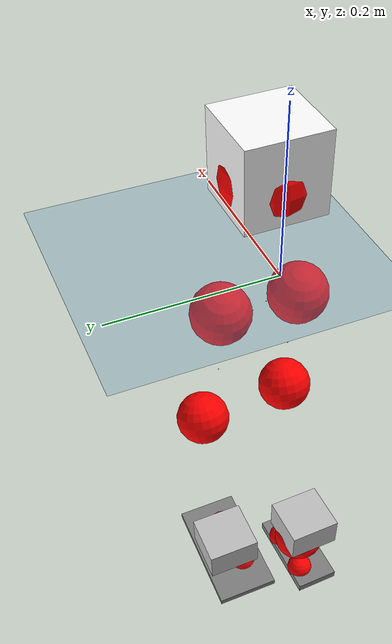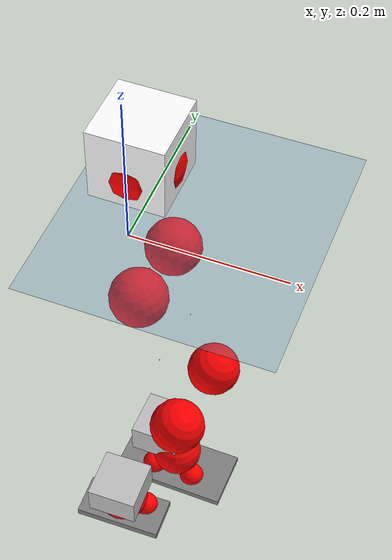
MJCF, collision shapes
<mujoco model="pi_12dof_release_v1">
  <compiler angle="radian" assetdir="assets" balanceinertia="true" inertiafromgeom="false"/>

  <option timestep="0.005" density="1.2" viscosity="2e-05"/>

  <size nkey="1"/>

  <visual>
    <quality shadowsize="8192"/>
    <map shadowclip="0.5"/>
  </visual>

  <default>
    <default class="/">
      <joint armature="0.01" damping="0.01" frictionloss="0.01"/>
      <geom contype="0" conaffinity="0" group="1" solref="-1000 -80"/>
      <site size="0.01 0.005 0.005" group="5"/>
      <general forcelimited="true" biastype="affine" gainprm="20" biasprm="0 -20 -0.5"/>
      <default class="foot">
        <geom size="0.0845 0.036 0.005" type="box" condim="6" group="4" priority="1" friction="0.9 0.2 0.2" solimp="0.015 1 0.005"/>
      </default>
      <default class="reward_collision_sphere">
        <geom group="5" rgba="1 0 0 1"/>
      </default>
    </default>
  </default>

  <asset>
    <texture type="skybox" colorspace="auto" name="//unnamed_texture_0" builtin="gradient" rgb1="0.95 0.95 0.95" rgb2="0.95 0.95 0.95" width="100" height="600"/>
    <texture type="2d" colorspace="auto" name="texplane" builtin="checker" rgb1="0.345 0.575 0.748" rgb2="0.345 0.575 0.748" markrgb="1 1 1" width="512" height="512"/>
    <material name="MatPlane" class="/" texture="texplane" texuniform="true" texrepeat="2 2" specular="0.9"/>
    <mesh name="baselink_1" class="/" file="baselink_1.STL"/>
    <mesh name="r_hip_pitch_link" class="/" file="r_hip_pitch_link.STL"/>
    <mesh name="r_hip_roll_link" class="/" file="r_hip_roll_link.STL"/>
    <mesh name="r_thigh_link" class="/" file="r_thigh_link.STL"/>
    <mesh name="r_calf_link" class="/" file="r_calf_link.STL"/>
    <mesh name="r_ankle_pitch_link" class="/" file="r_ankle_pitch_link.STL"/>
    <mesh name="r_ankle_roll_link" class="/" file="r_ankle_roll_link.STL"/>
    <mesh name="l_hip_pitch_link" class="/" file="l_hip_pitch_link.STL"/>
    <mesh name="l_hip_roll_link" class="/" file="l_hip_roll_link.STL"/>
    <mesh name="l_thigh_link" class="/" file="l_thigh_link.STL"/>
    <mesh name="l_calf_link" class="/" file="l_calf_link.STL"/>
    <mesh name="l_ankle_pitch_link" class="/" file="l_ankle_pitch_link.STL"/>
    <mesh name="l_ankle_roll_link" class="/" file="l_ankle_roll_link.STL"/>
  </asset>

  <worldbody>
    <geom name="floor" class="/" size="100 100 0.125" type="plane" group="0" material="MatPlane"/>
    <light name="toplight_shadow" class="/" pos="0 0 5" dir="0.0990148 0.0990148 -0.990148" type="directional" ambient="0.04 0.04 0.04" diffuse="0.55 0.55 0.55" specular="0.12 0.12 0.12"/>
    <light name="toplight_fill" class="/" pos="0 0 5" dir="0.0990148 0.0990148 -0.990148" type="directional" castshadow="false" ambient="0.04 0.04 0.04" diffuse="0.3 0.3 0.3" specular="0.08 0.08 0.08"/>
    <body name="trunk" pos="0.0148928 0.0106948 0.00677671" quat="0.999981 -0.00524158 0.00316556 0.0002497">
      <inertial pos="0.0166912 0.00190295 0.0653644" quat="0.673382 0.00366404 -0.00343509 0.739278" mass="1.54448" diaginertia="0.000209407 0.00147279 0.0351594"/>
      <joint name="//unnamed_joint_0" type="free"/>
      <geom name="//unnamed_geom_1" class="/" type="mesh" density="0" rgba="1 1 1 1" mesh="baselink_1"/>
      <geom name="//unnamed_geom_2" class="/" size="0.0457361 0.0457361 0.0457361" pos="0 0 0.12703" type="box" rgba="1 1 1 1"/>
      <geom name="//unnamed_geom_3" class="reward_collision_sphere" size="0.0503097" pos="0 0 0.111151"/>
      <site name="imu" class="/" pos="-0.00435115 -0.032057 0.0258865" size="0.00914721"/>
      <camera name="track" class="/" pos="0 -1.39816 0" quat="0.707107 0.707107 0 0" mode="trackcom"/>
      <camera name="ego_camera" class="/" pos="0.0342908 0 0.285818" quat="-0.5 -0.5 0.5 0.5"/>
      <body name="r_hip_pitch_link" pos="0.00951998 -0.00645128 -0.0592651" quat="0.991722 -0.00367946 -0.128236 0.00538504">
        <inertial pos="0.0162387 -0.0301667 0.00818984" quat="-0.0117846 0.705183 -0.0265285 0.708431" mass="0.245101" diaginertia="1.88777e-06 1.6098e-05 0.000623399"/>
        <joint name="r_hip_pitch_joint" class="/" pos="0 0 0" axis="0.0526377 -0.998586 -0.0074701" stiffness="0.0734317" range="-1.75312 1.13379" armature="0.00939456" damping="0.0195368" frictionloss="0.00417095"/>
        <geom name="//unnamed_geom_4" class="/" type="mesh" density="0" rgba="0.75294 0.75294 0.75294 1" mesh="r_hip_pitch_link"/>
        <geom name="//unnamed_geom_5" class="/" size="0.000457361 0.000457361 0.000457361" type="box" rgba="0.75294 0.75294 0.75294 1"/>
        <body name="r_hip_roll_link" pos="0.00218292 -0.0430107 -0.00658875" quat="1 -0.000346816 6.75237e-05 0.000266717">
          <inertial pos="-0.0156606 -0.00209744 -0.110197" quat="0.709667 -0.0817528 -0.0888287 0.694117" mass="0.316071" diaginertia="6.87822e-06 4.3566e-05 0.00140763"/>
          <joint name="r_hip_roll_joint" class="/" pos="0 0 0" axis="-1 -0.00050816 0.00020935" range="0.129559 0.329272" armature="0.0160923" damping="0.0581567" frictionloss="0.00868023"/>
          <geom name="//unnamed_geom_6" class="/" type="mesh" density="0" rgba="0.75294 0.75294 0.75294 1" mesh="r_hip_roll_link"/>
          <geom name="//unnamed_geom_7" class="/" size="0.000457361 0.000457361 0.000457361" type="box" rgba="0.75294 0.75294 0.75294 1"/>
          <geom name="//unnamed_geom_8" class="reward_collision_sphere" size="0.0365888"/>
          <body name="r_thigh_link" pos="0.000303376 -0.00428203 -0.108075" quat="0.999987 0.00291828 -0.00163767 0.00375146">
            <inertial pos="-0.0092687 -0.00765351 -0.0641606" quat="0.706057 0.706347 0.0493467 0.0110476" mass="0.0811303" diaginertia="2.70073e-06 1.42768e-05 0.000664144"/>
            <joint name="r_thigh_joint" class="/" pos="0 0 0" axis="-0.0384053 0.0455536 -0.998223" stiffness="0.0738064" range="-0.314498 0.394103" armature="0.0156038" damping="0" frictionloss="0.00988189"/>
            <geom name="//unnamed_geom_9" class="/" type="mesh" density="0" rgba="0.75294 0.75294 0.75294 1" mesh="r_thigh_link"/>
            <geom name="//unnamed_geom_10" class="/" size="0.000457361 0.000457361 0.000457361" type="box" rgba="0.75294 0.75294 0.75294 1"/>
            <body name="r_calf_link" pos="0.000942122 -0.0147075 -0.115641" quat="0.948272 0.00128989 0.317441 0.00306579">
              <inertial pos="-0.0120622 -0.0059447 -0.112109" quat="0.999925 -0.00800874 0.00120542 0.00921542" mass="0.425706" diaginertia="6.3558e-05 0.000534214 0.00171553"/>
              <joint name="r_calf_joint" class="/" pos="0 0 0" axis="0.000978219 -0.999995 0.00296853" range="-1.61575 0.911685" armature="0.00104042" damping="0.0653682" frictionloss="0.00190117"/>
              <geom name="//unnamed_geom_11" class="/" type="mesh" density="0" rgba="0.75294 0.75294 0.75294 1" mesh="r_calf_link"/>
              <geom name="//unnamed_geom_12" class="/" size="0.000457361 0.000457361 0.000457361" type="box" rgba="0.75294 0.75294 0.75294 1"/>
              <geom name="//unnamed_geom_13" class="reward_collision_sphere" size="0.0365888"/>
              <body name="r_ankle_pitch_link" pos="-0.00142358 0.00532916 -0.235778" quat="0.980849 0.00512441 -0.194678 0.00313723">
                <inertial pos="0.0131265 0.0180431 0.00534283" quat="0.000690339 0.707772 0.0130751 0.70632" mass="0.174402" diaginertia="6.63822e-06 4.36761e-05 0.00150447"/>
                <joint name="r_ankle_pitch_joint" class="/" pos="0 0 0" axis="-0.0337388 -0.99696 -0.0702274" stiffness="0.0726296" range="-1.05367 0.2676" armature="0.010352" damping="0.011447" frictionloss="0.0139232"/>
                <geom name="//unnamed_geom_14" class="/" type="mesh" density="0" rgba="0.75294 0.75294 0.75294 1" mesh="r_ankle_pitch_link"/>
                <geom name="//unnamed_geom_15" class="/" size="0.0356741 0.0365888 0.022868" type="box" rgba="0.75294 0.75294 0.75294 1"/>
                <body name="r_ankle_roll_link" pos="0.0241675 0.0053422 -0.00138" quat="1 -5.64423e-05 7.557e-05 0.000265292">
                  <inertial pos="-0.0193559 0.000682803 -0.01771" quat="0.551611 0.423431 0.442478 0.566255" mass="0.313836" diaginertia="1.60066e-05 0.000165363 0.00237455"/>
                  <joint name="r_ankle_roll_joint" class="/" pos="0 0 0" axis="-0.996408 0.0215389 0.0818984" range="-0.109227 0.40422" armature="0.00792293" damping="0.0481391" frictionloss="0.00893594"/>
                  <geom name="//unnamed_geom_16" class="/" type="mesh" density="0" rgba="0.75294 0.75294 0.75294 1" mesh="r_ankle_roll_link"/>
                  <geom name="//unnamed_geom_17" class="/" type="mesh" rgba="0.75294 0.75294 0.75294 1" mesh="r_ankle_roll_link"/>
                  <geom name="right_foot" class="foot" size="0.0637599 0.0303112 0.00588025" pos="-0.0233177 0 -0.0698665"/>
                  <geom name="//unnamed_geom_19" class="reward_collision_sphere" size="0.0365888" pos="-0.0228605 0 -0.0317575"/>
                  <geom name="//unnamed_geom_20" class="reward_collision_sphere" size="0.0182944" pos="0.00685815 0.0139816 -0.063515"/>
                  <geom name="//unnamed_geom_21" class="reward_collision_sphere" size="0.0182944" pos="-0.0548652 0.0139816 -0.063515"/>
                  <site name="right_foot" class="foot" pos="-0.0233177 0 -0.0698665" size="0.00914721"/>
                </body>
              </body>
            </body>
          </body>
        </body>
      </body>
      <body name="l_hip_pitch_link" pos="0.00364454 0.0126058 -0.0615296" quat="0.991324 -0.00462648 -0.131354 -0.0015625">
        <inertial pos="-0.0145358 0.0422441 -0.00281251" quat="-0.0406965 0.706565 0.0293967 0.705865" mass="0.276624" diaginertia="2.53664e-06 1.4835e-05 0.00106065"/>
        <joint name="l_hip_pitch_joint" class="/" pos="0 0 0" axis="-0.00816011 0.999857 0.0148082" stiffness="0.0303949" range="-1.42995 1.74064" armature="0.00384181" damping="0.059621" frictionloss="0.00586484"/>
        <geom name="//unnamed_geom_22" class="/" type="mesh" density="0" rgba="0.75294 0.75294 0.75294 1" mesh="l_hip_pitch_link"/>
        <geom name="//unnamed_geom_23" class="/" size="0.000457361 0.000457361 0.000457361" type="box" rgba="0.75294 0.75294 0.75294 1"/>
        <body name="l_hip_roll_link" pos="0.014281 0.0324637 -0.0111371" quat="0.999974 -0.00466244 -0.00546023 -0.000761356">
          <inertial pos="0.000488582 0.00405062 -0.0927988" quat="0.737452 -0.0623834 -0.108608 0.663685" mass="0.342867" diaginertia="6.1838e-06 5.29681e-05 0.00119426"/>
          <joint name="l_hip_roll_joint" class="/" pos="0 0 0" axis="-0.999242 -0.0385897 -0.0050508" range="-0.38912 0.250684" armature="0.00408548" damping="0.083844" frictionloss="0.00542962"/>
          <geom name="//unnamed_geom_24" class="/" type="mesh" density="0" rgba="0.75294 0.75294 0.75294 1" mesh="l_hip_roll_link"/>
          <geom name="//unnamed_geom_25" class="/" size="0.000457361 0.000457361 0.000457361" type="box" rgba="0.75294 0.75294 0.75294 1"/>
          <geom name="//unnamed_geom_26" class="reward_collision_sphere" size="0.0365888"/>
          <body name="l_thigh_link" pos="-0.00583603 -0.00341583 -0.117986" quat="1 0.000179965 1.29475e-05 -4.86514e-05">
            <inertial pos="0.000595946 -0.00108776 -0.0846061" quat="0.675802 0.737074 -0.003234 0.00178777" mass="0.0868847" diaginertia="2.48878e-06 1.56038e-05 0.000596659"/>
            <joint name="l_thigh_joint" class="/" pos="0 0 0" axis="0.00215888 -0.0223134 -0.999749" stiffness="0.00300116" range="-0.588703 0.351266" armature="0.0135825" damping="0" frictionloss="0.0105485"/>
            <geom name="//unnamed_geom_27" class="/" type="mesh" density="0" rgba="0.75294 0.75294 0.75294 1" mesh="l_thigh_link"/>
            <geom name="//unnamed_geom_28" class="/" size="0.000457361 0.000457361 0.000457361" type="box" rgba="0.75294 0.75294 0.75294 1"/>
            <body name="l_calf_link" pos="-0.00150579 0.014577 -0.12353" quat="0.947492 -0.00306013 0.319734 -0.00448481">
              <inertial pos="9.2422e-05 -0.00930631 -0.113485" quat="0.997422 -0.0254591 -0.0362424 0.0564556" mass="0.633704" diaginertia="6.27517e-05 0.000516386 0.00192738"/>
              <joint name="l_calf_joint" class="/" pos="0 0 0" axis="0.00175345 0.999996 -0.00204211" stiffness="0.0205434" range="-0.57426 1.5919" armature="0.0163039" damping="0.0131955" frictionloss="0.00224464"/>
              <geom name="//unnamed_geom_29" class="/" type="mesh" density="0" rgba="0.75294 0.75294 0.75294 1" mesh="l_calf_link"/>
              <geom name="//unnamed_geom_30" class="/" size="0.000457361 0.000457361 0.000457361" type="box" rgba="0.75294 0.75294 0.75294 1"/>
              <geom name="//unnamed_geom_31" class="reward_collision_sphere" size="0.0365888"/>
              <body name="l_ankle_pitch_link" pos="-0.000974143 0.00597184 -0.209914" quat="0.980624 -0.00049266 -0.195886 0.00243617">
                <inertial pos="0.00134457 0.00751563 -0.00133963" quat="-0.00182049 0.707861 0.00133972 0.706348" mass="0.1601" diaginertia="7.23905e-06 3.99794e-05 0.00153458"/>
                <joint name="l_ankle_pitch_joint" class="/" pos="0 0 0" axis="-0.0152962 0.99984 0.00927848" stiffness="0.0106471" range="-0.438151 1.30735" armature="0.00920617" damping="0.00219793" frictionloss="0.00584032"/>
                <geom name="//unnamed_geom_32" class="/" type="mesh" density="0" rgba="0.75294 0.75294 0.75294 1" mesh="l_ankle_pitch_link"/>
                <geom name="//unnamed_geom_33" class="/" size="0.0356741 0.0365888 0.022868" type="box" rgba="0.75294 0.75294 0.75294 1"/>
                <body name="l_ankle_roll_link" pos="0.0513982 -0.0112555 2.12592e-05" quat="0.999998 -0.00104212 0.00142926 -0.000674784">
                  <inertial pos="-0.0271279 -0.00174932 -0.0317742" quat="0.559903 0.441057 0.404962 0.572698" mass="0.379379" diaginertia="2.39673e-05 0.000233349 0.00296855"/>
                  <joint name="l_ankle_roll_joint" class="/" pos="0 0 0" axis="-0.998182 -0.0403301 -0.0447966" stiffness="0.0462525" range="-0.0518032 0.156616" armature="0.00832503" damping="0" frictionloss="0.00691899"/>
                  <geom name="//unnamed_geom_34" class="/" type="mesh" density="0" rgba="0.75294 0.75294 0.75294 1" mesh="l_ankle_roll_link"/>
                  <geom name="//unnamed_geom_35" class="/" type="mesh" rgba="0.75294 0.75294 0.75294 1" mesh="l_ankle_roll_link"/>
                  <geom name="left_foot" class="foot" size="0.0853449 0.0438619 0.0045101" pos="-0.0233177 0 -0.0698665"/>
                  <geom name="//unnamed_geom_37" class="reward_collision_sphere" size="0.0365888" pos="-0.0228605 0 -0.0317575"/>
                  <geom name="//unnamed_geom_38" class="reward_collision_sphere" size="0.0182944" pos="0.00685815 -0.0139816 -0.063515"/>
                  <geom name="//unnamed_geom_39" class="reward_collision_sphere" size="0.0182944" pos="-0.0548652 -0.0139816 -0.063515"/>
                  <site name="left_foot" class="foot" pos="-0.0233177 0 -0.0698665" size="0.00914721"/>
                </body>
              </body>
            </body>
          </body>
        </body>
      </body>
    </body>
  </worldbody>

  <contact>
    <pair class="/" geom1="floor" geom2="right_foot" name="//unnamed_contact_1"/>
    <pair class="/" geom1="floor" geom2="left_foot" name="//unnamed_contact_0"/>
  </contact>

  <actuator>
    <general name="r_hip_pitch_joint" class="/" joint="r_hip_pitch_joint" forcerange="-22.3561 22.3561" gainprm="16.802" biasprm="0 -16.802 -0.562036"/>
    <general name="r_hip_roll_joint" class="/" joint="r_hip_roll_joint" forcerange="-18.738 18.738" gainprm="16.802" biasprm="0 -16.802 -0.562036"/>
    <general name="r_thigh_joint" class="/" joint="r_thigh_joint" forcerange="-19.0341 19.0341" gainprm="16.802" biasprm="0 -16.802 -0.562036"/>
    <general name="r_calf_joint" class="/" joint="r_calf_joint" forcerange="-21.862 21.862" gainprm="16.802" biasprm="0 -16.802 -0.562036"/>
    <general name="r_ankle_pitch_joint" class="/" joint="r_ankle_pitch_joint" forcerange="-16.2765 16.2765" gainprm="16.802" biasprm="0 -16.802 -0.562036"/>
    <general name="r_ankle_roll_joint" class="/" joint="r_ankle_roll_joint" forcerange="-21.9485 21.9485" gainprm="16.802" biasprm="0 -16.802 -0.562036"/>
    <general name="l_hip_pitch_joint" class="/" joint="l_hip_pitch_joint" forcerange="-20.4149 20.4149" gainprm="16.802" biasprm="0 -16.802 -0.562036"/>
    <general name="l_hip_roll_joint" class="/" joint="l_hip_roll_joint" forcerange="-25.2963 25.2963" gainprm="16.802" biasprm="0 -16.802 -0.562036"/>
    <general name="l_thigh_joint" class="/" joint="l_thigh_joint" forcerange="-19.7769 19.7769" gainprm="16.802" biasprm="0 -16.802 -0.562036"/>
    <general name="l_calf_joint" class="/" joint="l_calf_joint" forcerange="-7.73693 7.73693" gainprm="16.802" biasprm="0 -16.802 -0.562036"/>
    <general name="l_ankle_pitch_joint" class="/" joint="l_ankle_pitch_joint" forcerange="-18.5378 18.5378" gainprm="16.802" biasprm="0 -16.802 -0.562036"/>
    <general name="l_ankle_roll_joint" class="/" joint="l_ankle_roll_joint" forcerange="-27.3611 27.3611" gainprm="16.802" biasprm="0 -16.802 -0.562036"/>
  </actuator>

  <sensor>
    <gyro site="imu" name="imu_angular_velocity"/>
    <velocimeter site="imu" name="imu_linear_velocity"/>
    <framelinvel objtype="site" objname="left_foot" name="left_foot_global_linear_velocity"/>
    <framelinvel objtype="site" objname="right_foot" name="right_foot_global_linear_velocity"/>
  </sensor>

  <keyframe>
    <key name="home" qpos="0 0 0.291 1 0 0 0 0.4 0 0 -0.8 0.4 0 -0.4 0 0 0.8 -0.4 0"/>
  </keyframe>
</mujoco>
